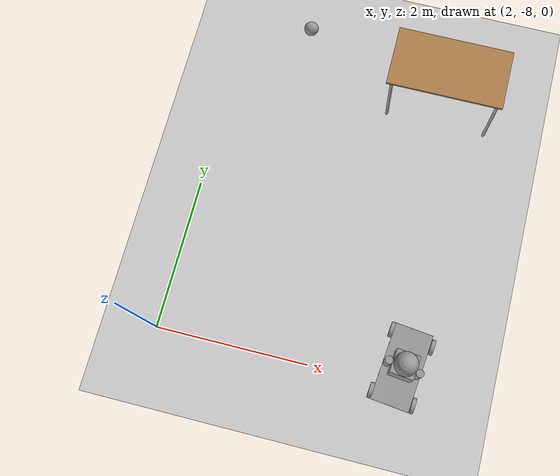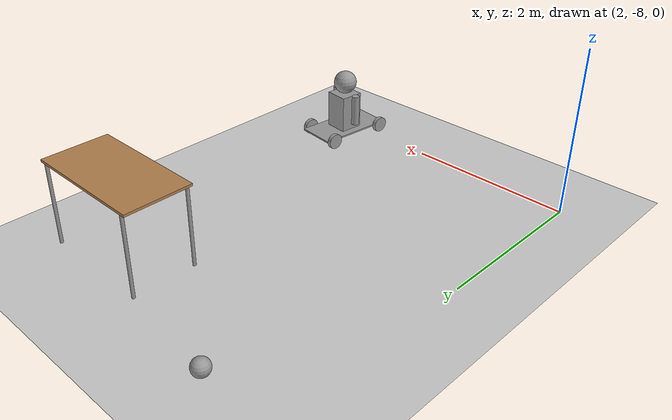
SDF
<sdf version="1.6">
 <world name="default">
  <model name="ground_plane">
   <static>1</static>
   <link name="link">
    <collision name="collision">
     <geometry><plane><normal>0 0 1</normal><size>100 100</size></plane></geometry>
     <surface>
      <contact><collide_bitmask>65535</collide_bitmask></contact>
      <friction><ode><mu>100</mu><mu2>50</mu2></ode></friction>
     </surface>
    </collision>
    <visual name="visual">
     <cast_shadows>0</cast_shadows>
     <geometry><plane><normal>0 0 1</normal><size>100 100</size></plane></geometry>
     <material>
      <script><uri>file://media/materials/scripts/gazebo.material</uri><name>Gazebo/Grey</name></script>
     </material>
    </visual>
   </link>
  </model>
  <model name="table">
   <static>1</static>
   <link name="link">
    <collision name="surface">
     <pose>0 0 1 0 -0 0</pose>
     <geometry><box><size>1.5 0.8 0.03</size></box></geometry>
     <surface><friction><ode><mu>0.6</mu><mu2>0.6</mu2></ode></friction></surface>
    </collision>
    <visual name="visual1">
     <pose>0 0 1 0 -0 0</pose>
     <geometry><box><size>1.5 0.8 0.03</size></box></geometry>
     <material>
      <script><uri>file://media/materials/scripts/gazebo.material</uri><name>Gazebo/Wood</name></script>
     </material>
    </visual>
    <collision name="front_left_leg">
     <pose>0.68 0.38 0.5 0 -0 0</pose>
     <geometry><cylinder><radius>0.02</radius><length>1</length></cylinder></geometry>
    </collision>
    <visual name="front_left_leg">
     <pose>0.68 0.38 0.5 0 -0 0</pose>
     <geometry><cylinder><radius>0.02</radius><length>1</length></cylinder></geometry>
     <material>
      <script><uri>file://media/materials/scripts/gazebo.material</uri><name>Gazebo/Grey</name></script>
     </material>
    </visual>
    <collision name="front_right_leg">
     <pose>0.68 -0.38 0.5 0 -0 0</pose>
     <geometry><cylinder><radius>0.02</radius><length>1</length></cylinder></geometry>
    </collision>
    <visual name="front_right_leg">
     <pose>0.68 -0.38 0.5 0 -0 0</pose>
     <geometry><cylinder><radius>0.02</radius><length>1</length></cylinder></geometry>
     <material>
      <script><uri>file://media/materials/scripts/gazebo.material</uri><name>Gazebo/Grey</name></script>
     </material>
    </visual>
    <collision name="back_right_leg">
     <pose>-0.68 -0.38 0.5 0 -0 0</pose>
     <geometry><cylinder><radius>0.02</radius><length>1</length></cylinder></geometry>
    </collision>
    <visual name="back_right_leg">
     <pose>-0.68 -0.38 0.5 0 -0 0</pose>
     <geometry><cylinder><radius>0.02</radius><length>1</length></cylinder></geometry>
     <material>
      <script><uri>file://media/materials/scripts/gazebo.material</uri><name>Gazebo/Grey</name></script>
     </material>
    </visual>
    <collision name="back_left_leg">
     <pose>-0.68 0.38 0.5 0 -0 0</pose>
     <geometry><cylinder><radius>0.02</radius><length>1</length></cylinder></geometry>
    </collision>
    <visual name="back_left_leg">
     <pose>-0.68 0.38 0.5 0 -0 0</pose>
     <geometry><cylinder><radius>0.02</radius><length>1</length></cylinder></geometry>
     <material>
      <script><uri>file://media/materials/scripts/gazebo.material</uri><name>Gazebo/Grey</name></script>
     </material>
    </visual>
   </link>
   <pose>4.88855 -4.02609 0 0 -0 0</pose>
  </model>
  <model name="HumanoidRobot_clone">
   <link name="link_1">
    <inertial>
     <mass>1</mass>
     <inertia>
      <ixx>0.166667</ixx>
      <ixy>0</ixy>
      <ixz>0</ixz>
      <iyy>0.166667</iyy>
      <iyz>0</iyz>
      <izz>0.166667</izz>
     </inertia>
    </inertial>
    <pose>0.002333 0.021111 0.035546 0 -0 0</pose>
    <visual name="visual">
     <geometry><box><size>1 0.5 0.02</size></box></geometry>
     <material>
      <lighting>1</lighting>
      <script><uri>file://media/materials/scripts/gazebo.material</uri><name>Gazebo/Grey</name></script>
      <shader type="vertex"><normal_map>__default__</normal_map></shader>
      <ambient>0.3 0.3 0.3 1</ambient>
      <diffuse>0.7 0.7 0.7 1</diffuse>
      <specular>0.01 0.01 0.01 1</specular>
      <emissive>0 0 0 1</emissive>
     </material>
    </visual>
    <collision name="collision">
     <geometry><box><size>1 0.5 0.02</size></box></geometry>
     <surface>
      <friction>
       <ode><mu>1</mu><mu2>1</mu2><fdir1>0 0 0</fdir1><slip1>0</slip1><slip2>0</slip2></ode>
       <torsional>
        <coefficient>1</coefficient>
        <patch_radius>0</patch_radius>
        <surface_radius>0</surface_radius>
        <use_patch_radius>1</use_patch_radius>
        <ode><slip>0</slip></ode>
       </torsional>
      </friction>
      <bounce><restitution_coefficient>0</restitution_coefficient><threshold>1e+06</threshold></bounce>
      <contact>
       <collide_without_contact>0</collide_without_contact>
       <collide_without_contact_bitmask>1</collide_without_contact_bitmask>
       <collide_bitmask>1</collide_bitmask>
       <ode>
        <soft_cfm>0</soft_cfm>
        <soft_erp>0.2</soft_erp>
        <kp>1e+13</kp>
        <kd>1</kd>
        <max_vel>0.01</max_vel>
        <min_depth>0</min_depth>
       </ode>
       <bullet>
        <split_impulse>1</split_impulse>
        <split_impulse_penetration_threshold>-0.01</split_impulse_penetration_threshold>
        <soft_cfm>0</soft_cfm>
        <soft_erp>0.2</soft_erp>
        <kp>1e+13</kp>
        <kd>1</kd>
       </bullet>
      </contact>
     </surface>
    </collision>
   </link>
   <link name="link_2">
    <inertial>
     <mass>1</mass>
     <inertia><ixx>0.145833</ixx><ixy>0</ixy><ixz>0</ixz><iyy>0.145833</iyy><iyz>0</iyz><izz>0.125</izz></inertia>
    </inertial>
    <pose>0.362333 -0.254 0.035434 1.57 -0 0</pose>
    <visual name="visual">
     <geometry><cylinder><radius>0.1</radius><length>0.05</length></cylinder></geometry>
     <material>
      <lighting>1</lighting>
      <script><uri>file://media/materials/scripts/gazebo.material</uri><name>Gazebo/Grey</name></script>
      <shader type="vertex"><normal_map>__default__</normal_map></shader>
      <ambient>0.3 0.3 0.3 1</ambient>
      <diffuse>0.7 0.7 0.7 1</diffuse>
      <specular>0.01 0.01 0.01 1</specular>
      <emissive>0 0 0 1</emissive>
     </material>
    </visual>
    <collision name="collision">
     <geometry><cylinder><radius>0.1</radius><length>0.05</length></cylinder></geometry>
     <surface>
      <friction>
       <ode><mu>1</mu><mu2>1</mu2><fdir1>0 0 0</fdir1><slip1>0</slip1><slip2>0</slip2></ode>
       <torsional>
        <coefficient>1</coefficient>
        <patch_radius>0</patch_radius>
        <surface_radius>0</surface_radius>
        <use_patch_radius>1</use_patch_radius>
        <ode><slip>0</slip></ode>
       </torsional>
      </friction>
      <bounce><restitution_coefficient>0</restitution_coefficient><threshold>1e+06</threshold></bounce>
      <contact>
       <collide_without_contact>0</collide_without_contact>
       <collide_without_contact_bitmask>1</collide_without_contact_bitmask>
       <collide_bitmask>1</collide_bitmask>
       <ode>
        <soft_cfm>0</soft_cfm>
        <soft_erp>0.2</soft_erp>
        <kp>1e+13</kp>
        <kd>1</kd>
        <max_vel>0.01</max_vel>
        <min_depth>0</min_depth>
       </ode>
       <bullet>
        <split_impulse>1</split_impulse>
        <split_impulse_penetration_threshold>-0.01</split_impulse_penetration_threshold>
        <soft_cfm>0</soft_cfm>
        <soft_erp>0.2</soft_erp>
        <kp>1e+13</kp>
        <kd>1</kd>
       </bullet>
      </contact>
     </surface>
    </collision>
   </link>
   <link name="link_2_clone">
    <inertial>
     <mass>1</mass>
     <inertia><ixx>0.145833</ixx><ixy>0</ixy><ixz>0</ixz><iyy>0.145833</iyy><iyz>0</iyz><izz>0.125</izz></inertia>
    </inertial>
    <pose>-0.397667 -0.253969 0.035546 1.57 -0 0</pose>
    <visual name="visual">
     <geometry><cylinder><radius>0.1</radius><length>0.05</length></cylinder></geometry>
     <material>
      <lighting>1</lighting>
      <script><uri>file://media/materials/scripts/gazebo.material</uri><name>Gazebo/Grey</name></script>
      <shader type="vertex"><normal_map>__default__</normal_map></shader>
      <ambient>0.3 0.3 0.3 1</ambient>
      <diffuse>0.7 0.7 0.7 1</diffuse>
      <specular>0.01 0.01 0.01 1</specular>
      <emissive>0 0 0 1</emissive>
     </material>
    </visual>
    <collision name="collision">
     <geometry><cylinder><radius>0.1</radius><length>0.05</length></cylinder></geometry>
     <surface>
      <friction>
       <ode><mu>1</mu><mu2>1</mu2><fdir1>0 0 0</fdir1><slip1>0</slip1><slip2>0</slip2></ode>
       <torsional>
        <coefficient>1</coefficient>
        <patch_radius>0</patch_radius>
        <surface_radius>0</surface_radius>
        <use_patch_radius>1</use_patch_radius>
        <ode><slip>0</slip></ode>
       </torsional>
      </friction>
      <bounce><restitution_coefficient>0</restitution_coefficient><threshold>1e+06</threshold></bounce>
      <contact>
       <collide_without_contact>0</collide_without_contact>
       <collide_without_contact_bitmask>1</collide_without_contact_bitmask>
       <collide_bitmask>1</collide_bitmask>
       <ode>
        <soft_cfm>0</soft_cfm>
        <soft_erp>0.2</soft_erp>
        <kp>1e+13</kp>
        <kd>1</kd>
        <max_vel>0.01</max_vel>
        <min_depth>0</min_depth>
       </ode>
       <bullet>
        <split_impulse>1</split_impulse>
        <split_impulse_penetration_threshold>-0.01</split_impulse_penetration_threshold>
        <soft_cfm>0</soft_cfm>
        <soft_erp>0.2</soft_erp>
        <kp>1e+13</kp>
        <kd>1</kd>
       </bullet>
      </contact>
     </surface>
    </collision>
   </link>
   <link name="link_2_clone_0">
    <inertial>
     <mass>1</mass>
     <inertia><ixx>0.145833</ixx><ixy>0</ixy><ixz>0</ixz><iyy>0.145833</iyy><iyz>0</iyz><izz>0.125</izz></inertia>
    </inertial>
    <pose>-0.397667 0.296191 0.035546 1.57 -0 0</pose>
    <visual name="visual">
     <geometry><cylinder><radius>0.1</radius><length>0.05</length></cylinder></geometry>
     <material>
      <lighting>1</lighting>
      <script><uri>file://media/materials/scripts/gazebo.material</uri><name>Gazebo/Grey</name></script>
      <shader type="vertex"><normal_map>__default__</normal_map></shader>
      <ambient>0.3 0.3 0.3 1</ambient>
      <diffuse>0.7 0.7 0.7 1</diffuse>
      <specular>0.01 0.01 0.01 1</specular>
      <emissive>0 0 0 1</emissive>
     </material>
    </visual>
    <collision name="collision">
     <geometry><cylinder><radius>0.1</radius><length>0.05</length></cylinder></geometry>
     <surface>
      <friction>
       <ode><mu>1</mu><mu2>1</mu2><fdir1>0 0 0</fdir1><slip1>0</slip1><slip2>0</slip2></ode>
       <torsional>
        <coefficient>1</coefficient>
        <patch_radius>0</patch_radius>
        <surface_radius>0</surface_radius>
        <use_patch_radius>1</use_patch_radius>
        <ode><slip>0</slip></ode>
       </torsional>
      </friction>
      <bounce><restitution_coefficient>0</restitution_coefficient><threshold>1e+06</threshold></bounce>
      <contact>
       <collide_without_contact>0</collide_without_contact>
       <collide_without_contact_bitmask>1</collide_without_contact_bitmask>
       <collide_bitmask>1</collide_bitmask>
       <ode>
        <soft_cfm>0</soft_cfm>
        <soft_erp>0.2</soft_erp>
        <kp>1e+13</kp>
        <kd>1</kd>
        <max_vel>0.01</max_vel>
        <min_depth>0</min_depth>
       </ode>
       <bullet>
        <split_impulse>1</split_impulse>
        <split_impulse_penetration_threshold>-0.01</split_impulse_penetration_threshold>
        <soft_cfm>0</soft_cfm>
        <soft_erp>0.2</soft_erp>
        <kp>1e+13</kp>
        <kd>1</kd>
       </bullet>
      </contact>
     </surface>
    </collision>
   </link>
   <link name="link_2_clone_1">
    <inertial>
     <mass>1</mass>
     <inertia><ixx>0.145833</ixx><ixy>0</ixy><ixz>0</ixz><iyy>0.145833</iyy><iyz>0</iyz><izz>0.125</izz></inertia>
    </inertial>
    <pose>0.402333 0.296191 0.035546 1.57 -0 0</pose>
    <visual name="visual">
     <geometry><cylinder><radius>0.1</radius><length>0.05</length></cylinder></geometry>
     <material>
      <lighting>1</lighting>
      <script><uri>file://media/materials/scripts/gazebo.material</uri><name>Gazebo/Grey</name></script>
      <shader type="vertex"><normal_map>__default__</normal_map></shader>
      <ambient>0.3 0.3 0.3 1</ambient>
      <diffuse>0.7 0.7 0.7 1</diffuse>
      <specular>0.01 0.01 0.01 1</specular>
      <emissive>0 0 0 1</emissive>
     </material>
    </visual>
    <collision name="collision">
     <geometry><cylinder><radius>0.1</radius><length>0.05</length></cylinder></geometry>
     <surface>
      <friction>
       <ode><mu>1</mu><mu2>1</mu2><fdir1>0 0 0</fdir1><slip1>0</slip1><slip2>0</slip2></ode>
       <torsional>
        <coefficient>1</coefficient>
        <patch_radius>0</patch_radius>
        <surface_radius>0</surface_radius>
        <use_patch_radius>1</use_patch_radius>
        <ode><slip>0</slip></ode>
       </torsional>
      </friction>
      <bounce><restitution_coefficient>0</restitution_coefficient><threshold>1e+06</threshold></bounce>
      <contact>
       <collide_without_contact>0</collide_without_contact>
       <collide_without_contact_bitmask>1</collide_without_contact_bitmask>
       <collide_bitmask>1</collide_bitmask>
       <ode>
        <soft_cfm>0</soft_cfm>
        <soft_erp>0.2</soft_erp>
        <kp>1e+13</kp>
        <kd>1</kd>
        <max_vel>0.01</max_vel>
        <min_depth>0</min_depth>
       </ode>
       <bullet>
        <split_impulse>1</split_impulse>
        <split_impulse_penetration_threshold>-0.01</split_impulse_penetration_threshold>
        <soft_cfm>0</soft_cfm>
        <soft_erp>0.2</soft_erp>
        <kp>1e+13</kp>
        <kd>1</kd>
       </bullet>
      </contact>
     </surface>
    </collision>
   </link>
   <link name="link_4">
    <inertial>
     <mass>1</mass>
     <inertia>
      <ixx>0.166667</ixx>
      <ixy>0</ixy>
      <ixz>0</ixz>
      <iyy>0.166667</iyy>
      <iyz>0</iyz>
      <izz>0.166667</izz>
     </inertia>
    </inertial>
    <pose>0.002333 0.021105 0.275546 0 -0 0</pose>
    <visual name="visual">
     <geometry><box><size>0.3 0.3 0.5</size></box></geometry>
     <material>
      <lighting>1</lighting>
      <script><uri>file://media/materials/scripts/gazebo.material</uri><name>Gazebo/Grey</name></script>
      <shader type="vertex"><normal_map>__default__</normal_map></shader>
      <ambient>0.3 0.3 0.3 1</ambient>
      <diffuse>0.7 0.7 0.7 1</diffuse>
      <specular>0.01 0.01 0.01 1</specular>
      <emissive>0 0 0 1</emissive>
     </material>
    </visual>
    <collision name="collision">
     <geometry><box><size>0.3 0.3 0.5</size></box></geometry>
     <surface>
      <friction>
       <ode><mu>1</mu><mu2>1</mu2><fdir1>0 0 0</fdir1><slip1>0</slip1><slip2>0</slip2></ode>
       <torsional>
        <coefficient>1</coefficient>
        <patch_radius>0</patch_radius>
        <surface_radius>0</surface_radius>
        <use_patch_radius>1</use_patch_radius>
        <ode><slip>0</slip></ode>
       </torsional>
      </friction>
      <bounce><restitution_coefficient>0</restitution_coefficient><threshold>1e+06</threshold></bounce>
      <contact>
       <collide_without_contact>0</collide_without_contact>
       <collide_without_contact_bitmask>1</collide_without_contact_bitmask>
       <collide_bitmask>1</collide_bitmask>
       <ode>
        <soft_cfm>0</soft_cfm>
        <soft_erp>0.2</soft_erp>
        <kp>1e+13</kp>
        <kd>1</kd>
        <max_vel>0.01</max_vel>
        <min_depth>0</min_depth>
       </ode>
       <bullet>
        <split_impulse>1</split_impulse>
        <split_impulse_penetration_threshold>-0.01</split_impulse_penetration_threshold>
        <soft_cfm>0</soft_cfm>
        <soft_erp>0.2</soft_erp>
        <kp>1e+13</kp>
        <kd>1</kd>
       </bullet>
      </contact>
     </surface>
    </collision>
   </link>
   <link name="link_5">
    <inertial>
     <mass>1</mass>
     <inertia><ixx>0.1</ixx><ixy>0</ixy><ixz>0</ixz><iyy>0.1</iyy><iyz>0</iyz><izz>0.1</izz></inertia>
    </inertial>
    <pose>-0.005667 0.021105 0.675546 0 -0 0</pose>
    <visual name="visual">
     <geometry><sphere><radius>0.15</radius></sphere></geometry>
     <material>
      <lighting>1</lighting>
      <script><uri>file://media/materials/scripts/gazebo.material</uri><name>Gazebo/Grey</name></script>
      <shader type="vertex"><normal_map>__default__</normal_map></shader>
      <ambient>0.3 0.3 0.3 1</ambient>
      <diffuse>0.7 0.7 0.7 1</diffuse>
      <specular>0.01 0.01 0.01 1</specular>
      <emissive>0 0 0 1</emissive>
     </material>
    </visual>
    <collision name="collision">
     <geometry><sphere><radius>0.15</radius></sphere></geometry>
     <surface>
      <friction>
       <ode><mu>1</mu><mu2>1</mu2><fdir1>0 0 0</fdir1><slip1>0</slip1><slip2>0</slip2></ode>
       <torsional>
        <coefficient>1</coefficient>
        <patch_radius>0</patch_radius>
        <surface_radius>0</surface_radius>
        <use_patch_radius>1</use_patch_radius>
        <ode><slip>0</slip></ode>
       </torsional>
      </friction>
      <bounce><restitution_coefficient>0</restitution_coefficient><threshold>1e+06</threshold></bounce>
      <contact>
       <collide_without_contact>0</collide_without_contact>
       <collide_without_contact_bitmask>1</collide_without_contact_bitmask>
       <collide_bitmask>1</collide_bitmask>
       <ode>
        <soft_cfm>0</soft_cfm>
        <soft_erp>0.2</soft_erp>
        <kp>1e+13</kp>
        <kd>1</kd>
        <max_vel>0.01</max_vel>
        <min_depth>0</min_depth>
       </ode>
       <bullet>
        <split_impulse>1</split_impulse>
        <split_impulse_penetration_threshold>-0.01</split_impulse_penetration_threshold>
        <soft_cfm>0</soft_cfm>
        <soft_erp>0.2</soft_erp>
        <kp>1e+13</kp>
        <kd>1</kd>
       </bullet>
      </contact>
     </surface>
    </collision>
   </link>
   <link name="link_6">
    <inertial>
     <mass>1</mass>
     <inertia><ixx>0.145833</ixx><ixy>0</ixy><ixz>0</ixz><iyy>0.145833</iyy><iyz>0</iyz><izz>0.125</izz></inertia>
    </inertial>
    <pose>-0.042667 -0.178895 0.335546 0 -0 0</pose>
    <visual name="visual">
     <geometry><cylinder><radius>0.05</radius><length>0.4</length></cylinder></geometry>
     <material>
      <lighting>1</lighting>
      <script><uri>file://media/materials/scripts/gazebo.material</uri><name>Gazebo/Grey</name></script>
      <shader type="vertex"><normal_map>__default__</normal_map></shader>
      <ambient>0.3 0.3 0.3 1</ambient>
      <diffuse>0.7 0.7 0.7 1</diffuse>
      <specular>0.01 0.01 0.01 1</specular>
      <emissive>0 0 0 1</emissive>
     </material>
    </visual>
    <collision name="collision">
     <geometry><cylinder><radius>0.05</radius><length>0.4</length></cylinder></geometry>
     <surface>
      <friction>
       <ode><mu>1</mu><mu2>1</mu2><fdir1>0 0 0</fdir1><slip1>0</slip1><slip2>0</slip2></ode>
       <torsional>
        <coefficient>1</coefficient>
        <patch_radius>0</patch_radius>
        <surface_radius>0</surface_radius>
        <use_patch_radius>1</use_patch_radius>
        <ode><slip>0</slip></ode>
       </torsional>
      </friction>
      <bounce><restitution_coefficient>0</restitution_coefficient><threshold>1e+06</threshold></bounce>
      <contact>
       <collide_without_contact>0</collide_without_contact>
       <collide_without_contact_bitmask>1</collide_without_contact_bitmask>
       <collide_bitmask>1</collide_bitmask>
       <ode>
        <soft_cfm>0</soft_cfm>
        <soft_erp>0.2</soft_erp>
        <kp>1e+13</kp>
        <kd>1</kd>
        <max_vel>0.01</max_vel>
        <min_depth>0</min_depth>
       </ode>
       <bullet>
        <split_impulse>1</split_impulse>
        <split_impulse_penetration_threshold>-0.01</split_impulse_penetration_threshold>
        <soft_cfm>0</soft_cfm>
        <soft_erp>0.2</soft_erp>
        <kp>1e+13</kp>
        <kd>1</kd>
       </bullet>
      </contact>
     </surface>
    </collision>
   </link>
   <link name="link_6_clone">
    <inertial>
     <mass>1</mass>
     <inertia><ixx>0.145833</ixx><ixy>0</ixy><ixz>0</ixz><iyy>0.145833</iyy><iyz>0</iyz><izz>0.125</izz></inertia>
    </inertial>
    <pose>-0.017667 0.221105 0.335546 0 -0 0</pose>
    <visual name="visual">
     <geometry><cylinder><radius>0.05</radius><length>0.4</length></cylinder></geometry>
     <material>
      <lighting>1</lighting>
      <script><uri>file://media/materials/scripts/gazebo.material</uri><name>Gazebo/Grey</name></script>
      <shader type="vertex"><normal_map>__default__</normal_map></shader>
      <ambient>0.3 0.3 0.3 1</ambient>
      <diffuse>0.7 0.7 0.7 1</diffuse>
      <specular>0.01 0.01 0.01 1</specular>
      <emissive>0 0 0 1</emissive>
     </material>
    </visual>
    <collision name="collision">
     <geometry><cylinder><radius>0.05</radius><length>0.4</length></cylinder></geometry>
     <surface>
      <friction>
       <ode><mu>1</mu><mu2>1</mu2><fdir1>0 0 0</fdir1><slip1>0</slip1><slip2>0</slip2></ode>
       <torsional>
        <coefficient>1</coefficient>
        <patch_radius>0</patch_radius>
        <surface_radius>0</surface_radius>
        <use_patch_radius>1</use_patch_radius>
        <ode><slip>0</slip></ode>
       </torsional>
      </friction>
      <bounce><restitution_coefficient>0</restitution_coefficient><threshold>1e+06</threshold></bounce>
      <contact>
       <collide_without_contact>0</collide_without_contact>
       <collide_without_contact_bitmask>1</collide_without_contact_bitmask>
       <collide_bitmask>1</collide_bitmask>
       <ode>
        <soft_cfm>0</soft_cfm>
        <soft_erp>0.2</soft_erp>
        <kp>1e+13</kp>
        <kd>1</kd>
        <max_vel>0.01</max_vel>
        <min_depth>0</min_depth>
       </ode>
       <bullet>
        <split_impulse>1</split_impulse>
        <split_impulse_penetration_threshold>-0.01</split_impulse_penetration_threshold>
        <soft_cfm>0</soft_cfm>
        <soft_erp>0.2</soft_erp>
        <kp>1e+13</kp>
        <kd>1</kd>
       </bullet>
      </contact>
     </surface>
    </collision>
   </link>
   <joint name="link_1_JOINT_0" type="revolute">
    <parent>link_1</parent>
    <child>link_2</child>
    <axis>
     <xyz>0 0 1</xyz>
     <use_parent_model_frame>0</use_parent_model_frame>
     <limit>
      <lower>-1.79769e+308</lower>
      <upper>1.79769e+308</upper>
      <effort>-1</effort>
      <velocity>-1</velocity>
     </limit>
     <dynamics>
      <spring_reference>0</spring_reference>
      <spring_stiffness>0</spring_stiffness>
      <damping>0</damping>
     </dynamics>
    </axis>
    <physics>
     <ode><limit><cfm>0</cfm><erp>0.2</erp></limit><suspension><cfm>0</cfm><erp>0.2</erp></suspension></ode>
    </physics>
   </joint>
   <joint name="link_1_JOINT_1" type="revolute">
    <parent>link_1</parent>
    <child>link_2_clone</child>
    <axis>
     <xyz>0 0 1</xyz>
     <use_parent_model_frame>0</use_parent_model_frame>
     <limit>
      <lower>-1.79769e+308</lower>
      <upper>1.79769e+308</upper>
      <effort>-1</effort>
      <velocity>-1</velocity>
     </limit>
     <dynamics>
      <spring_reference>0</spring_reference>
      <spring_stiffness>0</spring_stiffness>
      <damping>0</damping>
     </dynamics>
    </axis>
    <physics>
     <ode><limit><cfm>0</cfm><erp>0.2</erp></limit><suspension><cfm>0</cfm><erp>0.2</erp></suspension></ode>
    </physics>
   </joint>
   <joint name="link_1_JOINT_2" type="revolute">
    <parent>link_1</parent>
    <child>link_2_clone_0</child>
    <axis>
     <xyz>0 0 1</xyz>
     <use_parent_model_frame>0</use_parent_model_frame>
     <limit>
      <lower>-1.79769e+308</lower>
      <upper>1.79769e+308</upper>
      <effort>-1</effort>
      <velocity>-1</velocity>
     </limit>
     <dynamics>
      <spring_reference>0</spring_reference>
      <spring_stiffness>0</spring_stiffness>
      <damping>0</damping>
     </dynamics>
    </axis>
    <physics>
     <ode><limit><cfm>0</cfm><erp>0.2</erp></limit><suspension><cfm>0</cfm><erp>0.2</erp></suspension></ode>
    </physics>
   </joint>
   <joint name="link_1_JOINT_3" type="revolute">
    <parent>link_1</parent>
    <child>link_2_clone_1</child>
    <axis>
     <xyz>0 0 1</xyz>
     <use_parent_model_frame>0</use_parent_model_frame>
     <limit>
      <lower>-1.79769e+308</lower>
      <upper>1.79769e+308</upper>
      <effort>-1</effort>
      <velocity>-1</velocity>
     </limit>
     <dynamics>
      <spring_reference>0</spring_reference>
      <spring_stiffness>0</spring_stiffness>
      <damping>0</damping>
     </dynamics>
    </axis>
    <physics>
     <ode><limit><cfm>0</cfm><erp>0.2</erp></limit><suspension><cfm>0</cfm><erp>0.2</erp></suspension></ode>
    </physics>
   </joint>
   <joint name="link_1_JOINT_4" type="revolute">
    <parent>link_1</parent>
    <child>link_4</child>
    <axis>
     <xyz>0 0 1</xyz>
     <use_parent_model_frame>0</use_parent_model_frame>
     <limit>
      <lower>-1.79769e+308</lower>
      <upper>1.79769e+308</upper>
      <effort>-1</effort>
      <velocity>-1</velocity>
     </limit>
     <dynamics>
      <spring_reference>0</spring_reference>
      <spring_stiffness>0</spring_stiffness>
      <damping>0</damping>
     </dynamics>
    </axis>
    <physics>
     <ode><limit><cfm>0</cfm><erp>0.2</erp></limit><suspension><cfm>0</cfm><erp>0.2</erp></suspension></ode>
    </physics>
   </joint>
   <joint name="link_4_JOINT_5" type="revolute">
    <parent>link_4</parent>
    <child>link_5</child>
    <axis>
     <xyz>0 0 1</xyz>
     <use_parent_model_frame>0</use_parent_model_frame>
     <limit>
      <lower>-1.79769e+308</lower>
      <upper>1.79769e+308</upper>
      <effort>-1</effort>
      <velocity>-1</velocity>
     </limit>
     <dynamics>
      <spring_reference>0</spring_reference>
      <spring_stiffness>0</spring_stiffness>
      <damping>0</damping>
     </dynamics>
    </axis>
    <physics>
     <ode><limit><cfm>0</cfm><erp>0.2</erp></limit><suspension><cfm>0</cfm><erp>0.2</erp></suspension></ode>
    </physics>
   </joint>
   <joint name="link_4_JOINT_6" type="revolute">
    <parent>link_4</parent>
    <child>link_6</child>
    <axis>
     <xyz>0 1 0</xyz>
     <use_parent_model_frame>0</use_parent_model_frame>
     <limit>
      <lower>-1.79769e+308</lower>
      <upper>1.79769e+308</upper>
      <effort>-1</effort>
      <velocity>-1</velocity>
     </limit>
     <dynamics>
      <spring_reference>0</spring_reference>
      <spring_stiffness>0</spring_stiffness>
      <damping>0</damping>
     </dynamics>
    </axis>
    <physics>
     <ode><limit><cfm>0</cfm><erp>0.2</erp></limit><suspension><cfm>0</cfm><erp>0.2</erp></suspension></ode>
    </physics>
   </joint>
   <joint name="link_4_JOINT_7" type="revolute">
    <parent>link_4</parent>
    <child>link_6_clone</child>
    <axis>
     <xyz>0 1 0</xyz>
     <use_parent_model_frame>0</use_parent_model_frame>
     <limit>
      <lower>-1.79769e+308</lower>
      <upper>1.79769e+308</upper>
      <effort>-1</effort>
      <velocity>-1</velocity>
     </limit>
     <dynamics>
      <spring_reference>0</spring_reference>
      <spring_stiffness>0</spring_stiffness>
      <damping>0</damping>
     </dynamics>
    </axis>
    <physics>
     <ode><limit><cfm>0</cfm><erp>0.2</erp></limit><suspension><cfm>0</cfm><erp>0.2</erp></suspension></ode>
    </physics>
   </joint>
   <static>0</static>
   <pose>5.18763 -7.74998 0.064531 -1.2e-05 -0.000133 1.46255</pose>
  </model>
  <model name="my_ball">
   <link name="link_0">
    <inertial>
     <mass>1</mass>
     <inertia><ixx>0.1</ixx><ixy>0</ixy><ixz>0</ixz><iyy>0.1</iyy><iyz>0</iyz><izz>0.1</izz></inertia>
    </inertial>
    <visual name="visual">
     <geometry><sphere><radius>0.1</radius></sphere></geometry>
     <material>
      <lighting>1</lighting>
      <script><uri>file://media/materials/scripts/gazebo.material</uri><name>Gazebo/Grey</name></script>
      <shader type="vertex"><normal_map>__default__</normal_map></shader>
      <ambient>1 1 1 1</ambient>
      <diffuse>1 1 1 1</diffuse>
      <specular>1 1 1 1</specular>
      <emissive>1 1 1 1</emissive>
     </material>
    </visual>
    <collision name="collision">
     <geometry><sphere><radius>0.1</radius></sphere></geometry>
     <surface>
      <friction>
       <ode><mu>1</mu><mu2>1</mu2><fdir1>0 0 0</fdir1><slip1>0</slip1><slip2>0</slip2></ode>
       <torsional>
        <coefficient>1</coefficient>
        <patch_radius>0</patch_radius>
        <surface_radius>0</surface_radius>
        <use_patch_radius>1</use_patch_radius>
        <ode><slip>0</slip></ode>
       </torsional>
      </friction>
      <bounce><restitution_coefficient>0</restitution_coefficient><threshold>1e+06</threshold></bounce>
      <contact>
       <collide_without_contact>0</collide_without_contact>
       <collide_without_contact_bitmask>1</collide_without_contact_bitmask>
       <collide_bitmask>1</collide_bitmask>
       <ode>
        <soft_cfm>0</soft_cfm>
        <soft_erp>0.2</soft_erp>
        <kp>1e+13</kp>
        <kd>1</kd>
        <max_vel>0.01</max_vel>
        <min_depth>0</min_depth>
       </ode>
       <bullet>
        <split_impulse>1</split_impulse>
        <split_impulse_penetration_threshold>-0.01</split_impulse_penetration_threshold>
        <soft_cfm>0</soft_cfm>
        <soft_erp>0.2</soft_erp>
        <kp>1e+13</kp>
        <kd>1</kd>
       </bullet>
      </contact>
     </surface>
    </collision>
   </link>
   <static>0</static>
   <pose>2.88573 -3.44739 0.1 0 -0 0</pose>
  </model>
 </world>
</sdf>
